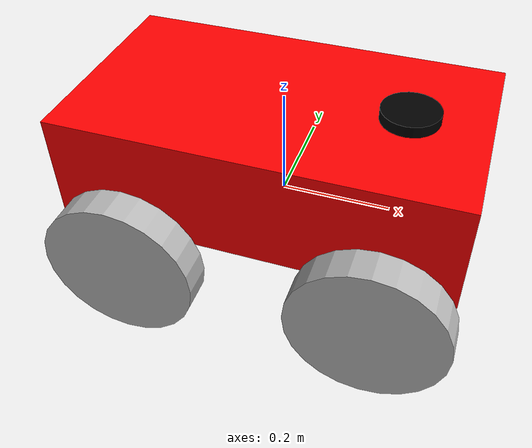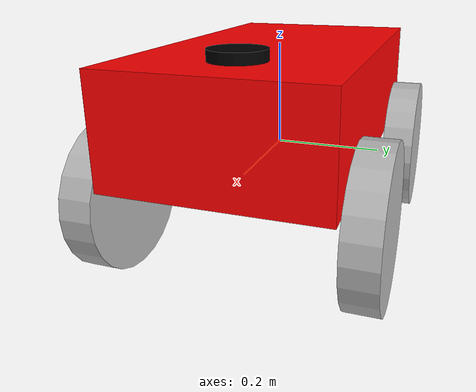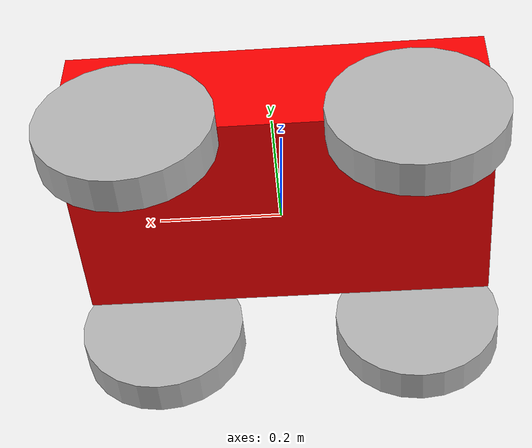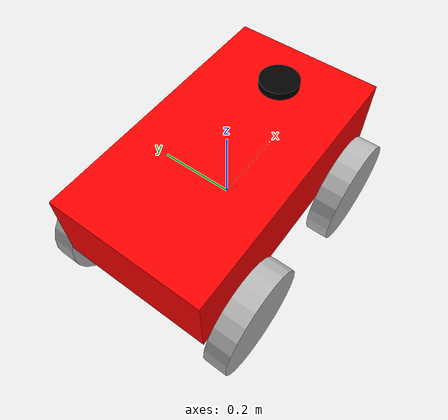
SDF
<?xml version="1.0" ?>
<sdf version="1.5">
  <model name="bearcar">
  <static>false</static>

  <!-- ****************** ROBOT BASE FOOTPRINT ***************************  -->
  <pose>0.0 0.0 0.0 0.0 0.0 0.0</pose>
  <link name="base_footprint"/>

  <!-- ********************** ROBOT BASE *********************************  -->
  <link name="base_link">

    <collision name="base_collision">
      <pose>0 0 0.1 0 0 0</pose>
      <geometry>
        <box>
          <size>0.70 0.39 0.20</size>
        </box>
      </geometry>
    </collision>

    <visual name="base_visual">
      <pose>0 0 0.1 0 0 0</pose>
      <geometry>
        <box>
          <size>0.70 0.39 0.20</size>
        </box>
      </geometry>
      <material>
        <ambient>1.0 0.0 0.0 1.0</ambient>
        <diffuse>1.0 0.0 0.0 1.0</diffuse>
        <specular>0.0 0.0 0.0 1.0</specular>
        <emissive>0.0 0.0 0.0 1.0</emissive>
      </material>
    </visual>
  </link>

  <!-- *********************** IMU SENSOR SETUP **************************  -->
  <link name="imu_link">
    <gravity>true</gravity>
    <sensor name="bmb_imu" type="imu">
      <always_on>true</always_on>
      <update_rate>100</update_rate>
      <visualize>true</visualize>
      <imu>
        <orientation>
          <x>
            <noise type="gaussian">
              <mean>0.0</mean>
              <stddev>2e-3</stddev>
            </noise>
          </x>
          <y>
            <noise type="gaussian">
              <mean>0.0</mean>
              <stddev>2e-3</stddev>
            </noise>
          </y>
          <z>
            <noise type="gaussian">
              <mean>0.0</mean>
              <stddev>2e-3</stddev>
            </noise>
          </z>
        </orientation>
        <angular_velocity>
          <x>
            <noise type="gaussian">
              <mean>0.0</mean>
              <stddev>2e-4</stddev>
            </noise>
          </x>
          <y>
            <noise type="gaussian">
              <mean>0.0</mean>
              <stddev>2e-4</stddev>
            </noise>
          </y>
          <z>
            <noise type="gaussian">
              <mean>0.0</mean>
              <stddev>2e-4</stddev>
            </noise>
          </z>
        </angular_velocity>
        <linear_acceleration>
          <x>
            <noise type="gaussian">
              <mean>0.0</mean>
              <stddev>1.7e-2</stddev>
            </noise>
          </x>
          <y>
            <noise type="gaussian">
              <mean>0.0</mean>
              <stddev>1.7e-2</stddev>
            </noise>
          </y>
          <z>
            <noise type="gaussian">
              <mean>0.0</mean>
              <stddev>1.7e-2</stddev>
            </noise>
          </z>
        </linear_acceleration>
      </imu>
      <plugin name="basic_mobile_bot_imu" filename="libgazebo_ros_imu_sensor.so">
        <initial_orientation_as_reference>false</initial_orientation_as_reference>
        <frame_name>imu_link</frame_name>
        <ros>
          <namespace>/imu</namespace>
          <remapping>~/out:=data</remapping>
        </ros>
      </plugin>
    </sensor>
  </link>

  <!-- ****************************** LIDAR *****************************    -->
  <link name="lidar_link">
    <inertial>
      <pose>0.215 0 0.13 0 0 0</pose>
      <inertia>
        <ixx>0.001</ixx>
        <ixy>0.000</ixy>
        <ixz>0.000</ixz>
        <iyy>0.001</iyy>
        <iyz>0.000</iyz>
        <izz>0.001</izz>
      </inertia>
      <mass>0.114</mass>
    </inertial>

    <collision name="lidar_collision">
      <pose>0.215 0 0.13 0 0 0</pose>
      <geometry>
        <cylinder>
          <radius>0.0508</radius>
          <length>0.18</length>
        </cylinder>
      </geometry>
    </collision>

    <visual name="lidar_visual">
      <pose>0.215 0 0.13 0 0 0</pose>
      <geometry>
        <cylinder>
          <radius>0.0508</radius>
          <length>0.18</length>
        </cylinder>
      </geometry>
      <material>
        <ambient>0.0 0.0 0.0 1.0</ambient>
        <diffuse>0.0 0.0 0.0 1.0</diffuse>
        <specular>0.0 0.0 0.0 1.0</specular>
        <emissive>0.0 0.0 0.0 1.0</emissive>
      </material>
    </visual>

    <sensor name="lidar" type="ray">
      <pose>0.215 0 0.215 0 0 0</pose>
      <always_on>true</always_on>
      <visualize>true</visualize>
      <update_rate>5</update_rate>
      <ray>
        <scan>
          <horizontal>
            <samples>120</samples>
            <resolution>1.000000</resolution>
            <min_angle>-3.14159</min_angle>
            <max_angle>3.14159</max_angle>
          </horizontal>
        </scan>
        <range>
          <min>0.3</min>
          <max>15.0</max>
          <resolution>0.015</resolution>
        </range>
        <noise>
          <type>gaussian</type>
          <mean>0.0</mean>
          <stddev>0.01</stddev>
        </noise>
      </ray>
      <plugin name="scan" filename="libgazebo_ros_ray_sensor.so">
        <ros>
          <remapping>~/out:=scan</remapping>
        </ros>
        <output_type>sensor_msgs/LaserScan</output_type>
        <frame_name>lidar_link</frame_name>
      </plugin>
    </sensor>
  </link>

  <!-- *********************** DRIVE WHEELS ******************************  -->
  <link name="drivewhl_l_link">
    <pose>-0.221 0.23 -0.05 0 1.570796 1.570796</pose>

    <collision name="drivewhl_l_collision">
      <geometry>
        <cylinder>
          <radius>0.14</radius>
          <length>0.06</length>
        </cylinder>
      </geometry>
    </collision>

    <visual name="drivewhl_l_visual">
      <geometry>
        <cylinder>
          <radius>0.14</radius>
          <length>0.06</length>
        </cylinder>
      </geometry>
    </visual>
  </link>

  <link name="drivewhl_r_link">
    <pose>-0.221 -0.23 -0.05 0 1.570796 1.570796</pose>

    <collision name="drivewhl_r_collision">
      <geometry>
        <cylinder>
          <radius>0.14</radius>
          <length>0.06</length>
        </cylinder>
      </geometry>
    </collision>

    <visual name="drivewhl_r_visual">
      <geometry>
        <cylinder>
          <radius>0.14</radius>
          <length>0.06</length>
        </cylinder>
      </geometry>
    </visual>
  </link>

  <link name="drivewhl_fl_link">
    <pose>0.221 0.23 -0.05 0 1.570796 1.570796</pose>

    <collision name="drivewhl_fl_collision">
      <geometry>
        <cylinder>
          <radius>0.14</radius>
          <length>0.06</length>
        </cylinder>
      </geometry>
    </collision>

    <visual name="drivewhl_fl_visual">
      <geometry>
        <cylinder>
          <radius>0.14</radius>
          <length>0.06</length>
        </cylinder>
      </geometry>
    </visual>
  </link>

  <link name="drivewhl_fr_link">
    <pose>0.221 -0.23 -0.05 0 1.570796 1.570796</pose>

    <collision name="drivewhl_fr_collision">
      <geometry>
        <cylinder>
          <radius>0.14</radius>
          <length>0.06</length>
        </cylinder>
      </geometry>
    </collision>

    <visual name="drivewhl_fr_visual">
      <geometry>
        <cylinder>
          <radius>0.14</radius>
          <length>0.06</length>
        </cylinder>
      </geometry>
    </visual>
  </link>

  <!-- ************************ JOINTS ***********************************  -->
  <!-- Pose of the joint is the same as the child link frame -->
  <!-- Axis is the axis of rotation relative to the child link frame -->

  <joint name="base_joint" type="fixed">
    <parent>base_footprint</parent>
    <child>base_link</child>
    <pose>0 0 0 0 0 0</pose>
  </joint>

  <joint name="drivewhl_l_joint" type="revolute">
    <parent>base_link</parent>
    <child>drivewhl_l_link</child>
    <pose>0 0 0 0 0 0</pose>
    <axis>
      <xyz>0 0 1</xyz>
    </axis>
  </joint>

  <joint name="drivewhl_r_joint" type="revolute">
    <parent>base_link</parent>
    <child>drivewhl_r_link</child>
    <pose>0 0 0 0 0 0</pose>
    <axis>
      <xyz>0 0 1</xyz>
    </axis>
  </joint>

  <joint name="drivewhl_fr_joint" type="universal">
    <parent>base_link</parent>
    <child>drivewhl_fr_link</child>
    <pose>0 0 0 0 0 0</pose>
    <axis>
      <xyz>-1 0 0</xyz>
      <limit>
        <!-- +- 50 degrees -->
        <lower>-1.570796</lower>
        <upper>1.570796</upper>
      </limit>
    </axis>
    <axis2>
      <xyz>0 0 1</xyz>
    </axis2>
  </joint>

  <joint name="drivewhl_fl_joint" type="universal">
    <parent>base_link</parent>
    <child>drivewhl_fl_link</child>
    <pose>0 0 0 0 0 0</pose>
    <axis>
      <xyz>-1 0 0</xyz>
      <limit>
        <!-- +- 50 degrees -->
        <lower>-1.570796</lower>
        <upper>1.570796</upper>
      </limit>
    </axis>
    <axis2>
      <xyz>0 0 1</xyz>
    </axis2>
  </joint>

  <joint name="imu_joint" type="fixed">
    <parent>base_link</parent>
    <child>imu_link</child>
    <pose>0 0 0 0 0 0</pose>
  </joint>

  <joint name="lidar_joint" type="fixed">
    <parent>base_link</parent>
    <child>lidar_link</child>
    <pose>0 0 0 0 0 0</pose>
  </joint>

 <!-- *********************** WHEEL ODOMETRY ***************************    -->
  <plugin name="ackermann_drive" filename="libgazebo_ros_ackermann_drive.so">

    <!-- Change the ROS topic we will publish the odometry data to -->
    <ros>
      <remapping>cmd_vel:=cmd_ack_vel</remapping>
      <remapping>odom:=wheel/odometry</remapping>
    </ros>

    <update_rate>30</update_rate>

    <!-- wheels -->
    <front_left_joint>drivewhl_fl_joint</front_left_joint>
    <front_right_joint>drivewhl_fr_joint</front_right_joint>
    <rear_left_joint>drivewhl_l_joint</rear_left_joint>
    <rear_right_joint>drivewhl_r_joint</rear_right_joint>
    <left_steering_joint>drivewhl_fl_joint</left_steering_joint>
    <right_steering_joint>drivewhl_fr_joint</right_steering_joint>

    <max_steer>1.570796</max_steer>

    <!-- kinematics -->

    <!-- limits -->
    <max_speed>10</max_speed>

      <!-- PID tuning -->
    <left_steering_pid_gain>1500 0 500</left_steering_pid_gain>
    <left_steering_i_range>0 0</left_steering_i_range>
    <right_steering_pid_gain>1500 0 500</right_steering_pid_gain>
    <right_steering_i_range>0 0</right_steering_i_range>
    <linear_velocity_pid_gain>100 0 5</linear_velocity_pid_gain>
    <linear_velocity_i_range>0 0</linear_velocity_i_range>

    <!-- Receive velocity commands on this ROS topic -->
    <command_topic>cmd_ack_vel</command_topic>

    <!-- output -->
    <!-- When false, publish no wheel odometry data to a ROS topic -->
    <publish_odom>true</publish_odom>

    <!-- When true, publish coordinate transform from odom to base_footprint -->
    <!-- I usually use the robot_localization package to publish this transform -->
    <publish_odom_tf>false</publish_odom_tf>

    <!-- When true, publish coordinate transform from base_link to the wheels -->
    <!-- The robot_state_publisher package is often used to publish this transform -->
    <publish_wheel_tf>true</publish_wheel_tf>

    <odometry_topic>odom</odometry_topic>
    <odometry_frame>odom</odometry_frame>
    <robot_base_frame>base_footprint</robot_base_frame>

  </plugin>

 <!-- *********************** JOINT STATE PUBLISHER *********************   -->

  </model>
</sdf>
